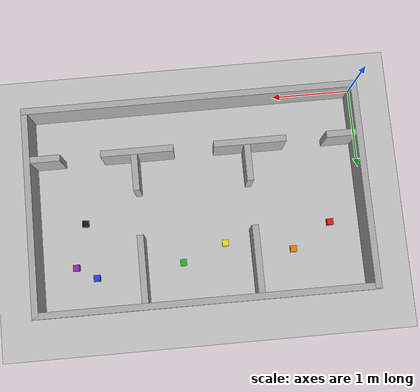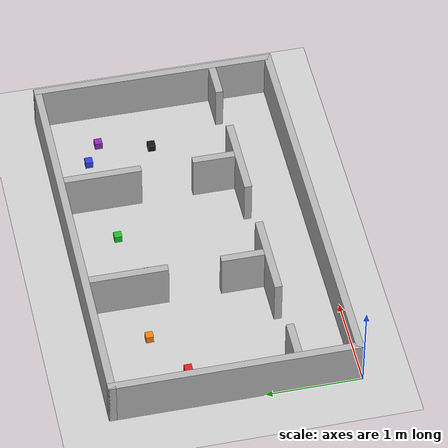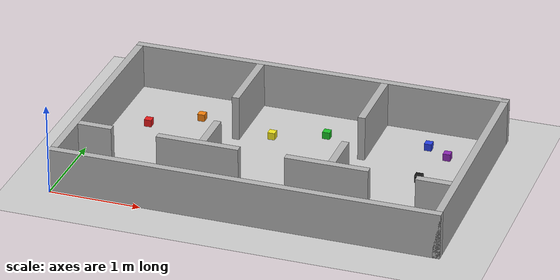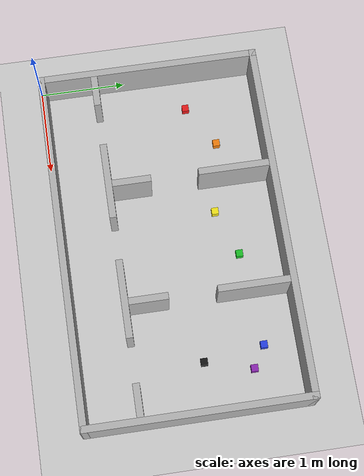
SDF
<?xml version="1.0" ?>

<sdf version="1.6">

  <world name="ee5112_arena">

    <!-- PHYSICS                                                -->

    <physics name="default_physics"
             default="true"
             type="ode">

      <gravity>0 0 -9.81</gravity>

      <ode>

        <solver>
          <type>quick</type>
          <iters>100</iters>
          <sor>1.3</sor>
        </solver>

        <constraints>
          <cfm>0.0</cfm>
          <erp>0.2</erp>
          <contact_max_correcting_vel>
            100.0
          </contact_max_correcting_vel>
          <contact_surface_layer>
            0.001
          </contact_surface_layer>
        </constraints>

      </ode>

      <max_step_size>0.001</max_step_size>

      <real_time_update_rate>
        1000
      </real_time_update_rate>

    </physics>

    <!-- LIGHTING                                               -->

    <include>
      <uri>model://sun</uri>
    </include>

    <!-- GROUND                                                 -->

    <include>
      <uri>model://ground_plane</uri>
    </include>

    <!-- ARENA + BLOCKS                                         -->

    <model name="outer_wall_1">
      <static>true</static>

      <pose>2.1000 0.0400 0.2500 0 0 0</pose>

      <link name="link">

        <collision name="collision">
          <geometry>
            <box>
              <size>4.2000 0.0800 0.5000</size>
            </box>
          </geometry>
        </collision>

        <visual name="visual">
          <geometry>
            <box>
              <size>4.2000 0.0800 0.5000</size>
            </box>
          </geometry>

          <material>
            <ambient>0.70 0.70 0.70 1.00</ambient>
            <diffuse>0.70 0.70 0.70 1.00</diffuse>
            <specular>0.10 0.10 0.10 1.00</specular>
          </material>
        </visual>

      </link>
    </model>

    <model name="outer_wall_2">
      <static>true</static>

      <pose>2.1000 2.5600 0.2500 0 0 0</pose>

      <link name="link">

        <collision name="collision">
          <geometry>
            <box>
              <size>4.2000 0.0800 0.5000</size>
            </box>
          </geometry>
        </collision>

        <visual name="visual">
          <geometry>
            <box>
              <size>4.2000 0.0800 0.5000</size>
            </box>
          </geometry>

          <material>
            <ambient>0.70 0.70 0.70 1.00</ambient>
            <diffuse>0.70 0.70 0.70 1.00</diffuse>
            <specular>0.10 0.10 0.10 1.00</specular>
          </material>
        </visual>

      </link>
    </model>

    <model name="outer_wall_3">
      <static>true</static>

      <pose>0.0400 1.3000 0.2500 0 0 0</pose>

      <link name="link">

        <collision name="collision">
          <geometry>
            <box>
              <size>0.0800 2.6000 0.5000</size>
            </box>
          </geometry>
        </collision>

        <visual name="visual">
          <geometry>
            <box>
              <size>0.0800 2.6000 0.5000</size>
            </box>
          </geometry>

          <material>
            <ambient>0.70 0.70 0.70 1.00</ambient>
            <diffuse>0.70 0.70 0.70 1.00</diffuse>
            <specular>0.10 0.10 0.10 1.00</specular>
          </material>
        </visual>

      </link>
    </model>

    <model name="outer_wall_4">
      <static>true</static>

      <pose>4.1600 1.3000 0.2500 0 0 0</pose>

      <link name="link">

        <collision name="collision">
          <geometry>
            <box>
              <size>0.0800 2.6000 0.5000</size>
            </box>
          </geometry>
        </collision>

        <visual name="visual">
          <geometry>
            <box>
              <size>0.0800 2.6000 0.5000</size>
            </box>
          </geometry>

          <material>
            <ambient>0.70 0.70 0.70 1.00</ambient>
            <diffuse>0.70 0.70 0.70 1.00</diffuse>
            <specular>0.10 0.10 0.10 1.00</specular>
          </material>
        </visual>

      </link>
    </model>

    <model name="corridor_div_1">
      <static>true</static>

      <pose>0.2650 0.6600 0.2500 0 0 0</pose>

      <link name="link">

        <collision name="collision">
          <geometry>
            <box>
              <size>0.3700 0.0800 0.5000</size>
            </box>
          </geometry>
        </collision>

        <visual name="visual">
          <geometry>
            <box>
              <size>0.3700 0.0800 0.5000</size>
            </box>
          </geometry>

          <material>
            <ambient>0.70 0.70 0.70 1.00</ambient>
            <diffuse>0.70 0.70 0.70 1.00</diffuse>
            <specular>0.10 0.10 0.10 1.00</specular>
          </material>
        </visual>

      </link>
    </model>

    <model name="corridor_div_2">
      <static>true</static>

      <pose>1.4000 0.6600 0.2500 0 0 0</pose>

      <link name="link">

        <collision name="collision">
          <geometry>
            <box>
              <size>0.9000 0.0800 0.5000</size>
            </box>
          </geometry>
        </collision>

        <visual name="visual">
          <geometry>
            <box>
              <size>0.9000 0.0800 0.5000</size>
            </box>
          </geometry>

          <material>
            <ambient>0.70 0.70 0.70 1.00</ambient>
            <diffuse>0.70 0.70 0.70 1.00</diffuse>
            <specular>0.10 0.10 0.10 1.00</specular>
          </material>
        </visual>

      </link>
    </model>

    <model name="corridor_div_3">
      <static>true</static>

      <pose>2.8000 0.6600 0.2500 0 0 0</pose>

      <link name="link">

        <collision name="collision">
          <geometry>
            <box>
              <size>0.9000 0.0800 0.5000</size>
            </box>
          </geometry>
        </collision>

        <visual name="visual">
          <geometry>
            <box>
              <size>0.9000 0.0800 0.5000</size>
            </box>
          </geometry>

          <material>
            <ambient>0.70 0.70 0.70 1.00</ambient>
            <diffuse>0.70 0.70 0.70 1.00</diffuse>
            <specular>0.10 0.10 0.10 1.00</specular>
          </material>
        </visual>

      </link>
    </model>

    <model name="corridor_div_4">
      <static>true</static>

      <pose>3.9350 0.6600 0.2500 0 0 0</pose>

      <link name="link">

        <collision name="collision">
          <geometry>
            <box>
              <size>0.3700 0.0800 0.5000</size>
            </box>
          </geometry>
        </collision>

        <visual name="visual">
          <geometry>
            <box>
              <size>0.3700 0.0800 0.5000</size>
            </box>
          </geometry>

          <material>
            <ambient>0.70 0.70 0.70 1.00</ambient>
            <diffuse>0.70 0.70 0.70 1.00</diffuse>
            <specular>0.10 0.10 0.10 1.00</specular>
          </material>
        </visual>

      </link>
    </model>

    <model name="vwall_12_low">
      <static>true</static>

      <pose>1.4400 0.9250 0.2500 0 0 0</pose>

      <link name="link">

        <collision name="collision">
          <geometry>
            <box>
              <size>0.0800 0.4500 0.5000</size>
            </box>
          </geometry>
        </collision>

        <visual name="visual">
          <geometry>
            <box>
              <size>0.0800 0.4500 0.5000</size>
            </box>
          </geometry>

          <material>
            <ambient>0.70 0.70 0.70 1.00</ambient>
            <diffuse>0.70 0.70 0.70 1.00</diffuse>
            <specular>0.10 0.10 0.10 1.00</specular>
          </material>
        </visual>

      </link>
    </model>

    <model name="vwall_12_high">
      <static>true</static>

      <pose>1.4400 2.1100 0.2500 0 0 0</pose>

      <link name="link">

        <collision name="collision">
          <geometry>
            <box>
              <size>0.0800 0.8200 0.5000</size>
            </box>
          </geometry>
        </collision>

        <visual name="visual">
          <geometry>
            <box>
              <size>0.0800 0.8200 0.5000</size>
            </box>
          </geometry>

          <material>
            <ambient>0.70 0.70 0.70 1.00</ambient>
            <diffuse>0.70 0.70 0.70 1.00</diffuse>
            <specular>0.10 0.10 0.10 1.00</specular>
          </material>
        </visual>

      </link>
    </model>

    <model name="vwall_23_low">
      <static>true</static>

      <pose>2.8400 0.9250 0.2500 0 0 0</pose>

      <link name="link">

        <collision name="collision">
          <geometry>
            <box>
              <size>0.0800 0.4500 0.5000</size>
            </box>
          </geometry>
        </collision>

        <visual name="visual">
          <geometry>
            <box>
              <size>0.0800 0.4500 0.5000</size>
            </box>
          </geometry>

          <material>
            <ambient>0.70 0.70 0.70 1.00</ambient>
            <diffuse>0.70 0.70 0.70 1.00</diffuse>
            <specular>0.10 0.10 0.10 1.00</specular>
          </material>
        </visual>

      </link>
    </model>

    <model name="vwall_23_high">
      <static>true</static>

      <pose>2.8400 2.1100 0.2500 0 0 0</pose>

      <link name="link">

        <collision name="collision">
          <geometry>
            <box>
              <size>0.0800 0.8200 0.5000</size>
            </box>
          </geometry>
        </collision>

        <visual name="visual">
          <geometry>
            <box>
              <size>0.0800 0.8200 0.5000</size>
            </box>
          </geometry>

          <material>
            <ambient>0.70 0.70 0.70 1.00</ambient>
            <diffuse>0.70 0.70 0.70 1.00</diffuse>
            <specular>0.10 0.10 0.10 1.00</specular>
          </material>
        </visual>

      </link>
    </model>

    <model name="block_red">
      <static>true</static>

      <pose>0.4500 1.7000 0.0400 0 0 0</pose>

      <link name="link">

        <collision name="collision">
          <geometry>
            <box>
              <size>0.0800 0.0800 0.0800</size>
            </box>
          </geometry>
        </collision>

        <visual name="visual">
          <geometry>
            <box>
              <size>0.0800 0.0800 0.0800</size>
            </box>
          </geometry>

          <material>
            <ambient>0.90 0.10 0.10 1.00</ambient>
            <diffuse>0.90 0.10 0.10 1.00</diffuse>
            <specular>0.10 0.10 0.10 1.00</specular>
            <emissive>0 0 0 0</emissive>
          </material>
        </visual>

      </link>
    </model>

    <model name="block_orange">
      <static>true</static>

      <pose>0.9500 2.0000 0.0400 0 0 0</pose>

      <link name="link">

        <collision name="collision">
          <geometry>
            <box>
              <size>0.0800 0.0800 0.0800</size>
            </box>
          </geometry>
        </collision>

        <visual name="visual">
          <geometry>
            <box>
              <size>0.0800 0.0800 0.0800</size>
            </box>
          </geometry>

          <material>
            <ambient>0.95 0.50 0.05 1.00</ambient>
            <diffuse>0.95 0.50 0.05 1.00</diffuse>
            <specular>0.10 0.10 0.10 1.00</specular>
            <emissive>0 0 0 0</emissive>
          </material>
        </visual>

      </link>
    </model>

    <model name="block_yellow">
      <static>true</static>

      <pose>1.8000 1.8500 0.0400 0 0 0</pose>

      <link name="link">

        <collision name="collision">
          <geometry>
            <box>
              <size>0.0800 0.0800 0.0800</size>
            </box>
          </geometry>
        </collision>

        <visual name="visual">
          <geometry>
            <box>
              <size>0.0800 0.0800 0.0800</size>
            </box>
          </geometry>

          <material>
            <ambient>0.95 0.90 0.10 1.00</ambient>
            <diffuse>0.95 0.90 0.10 1.00</diffuse>
            <specular>0.10 0.10 0.10 1.00</specular>
            <emissive>0 0 0 0</emissive>
          </material>
        </visual>

      </link>
    </model>

    <model name="block_green">
      <static>true</static>

      <pose>2.3500 2.0500 0.0400 0 0 0</pose>

      <link name="link">

        <collision name="collision">
          <geometry>
            <box>
              <size>0.0800 0.0800 0.0800</size>
            </box>
          </geometry>
        </collision>

        <visual name="visual">
          <geometry>
            <box>
              <size>0.0800 0.0800 0.0800</size>
            </box>
          </geometry>

          <material>
            <ambient>0.10 0.75 0.15 1.00</ambient>
            <diffuse>0.10 0.75 0.15 1.00</diffuse>
            <specular>0.10 0.10 0.10 1.00</specular>
            <emissive>0 0 0 0</emissive>
          </material>
        </visual>

      </link>
    </model>

    <model name="block_blue">
      <static>true</static>

      <pose>3.4500 2.1500 0.0400 0 0 0</pose>

      <link name="link">

        <collision name="collision">
          <geometry>
            <box>
              <size>0.0800 0.0800 0.0800</size>
            </box>
          </geometry>
        </collision>

        <visual name="visual">
          <geometry>
            <box>
              <size>0.0800 0.0800 0.0800</size>
            </box>
          </geometry>

          <material>
            <ambient>0.15 0.25 0.90 1.00</ambient>
            <diffuse>0.15 0.25 0.90 1.00</diffuse>
            <specular>0.10 0.10 0.10 1.00</specular>
            <emissive>0 0 0 0</emissive>
          </material>
        </visual>

      </link>
    </model>

    <model name="block_purple">
      <static>true</static>

      <pose>3.7000 2.0000 0.0400 0 0 0</pose>

      <link name="link">

        <collision name="collision">
          <geometry>
            <box>
              <size>0.0800 0.0800 0.0800</size>
            </box>
          </geometry>
        </collision>

        <visual name="visual">
          <geometry>
            <box>
              <size>0.0800 0.0800 0.0800</size>
            </box>
          </geometry>

          <material>
            <ambient>0.55 0.15 0.70 1.00</ambient>
            <diffuse>0.55 0.15 0.70 1.00</diffuse>
            <specular>0.10 0.10 0.10 1.00</specular>
            <emissive>0 0 0 0</emissive>
          </material>
        </visual>

      </link>
    </model>

    <model name="block_black">
      <static>true</static>

      <pose>3.5500 1.4500 0.0400 0 0 0</pose>

      <link name="link">

        <collision name="collision">
          <geometry>
            <box>
              <size>0.0800 0.0800 0.0800</size>
            </box>
          </geometry>
        </collision>

        <visual name="visual">
          <geometry>
            <box>
              <size>0.0800 0.0800 0.0800</size>
            </box>
          </geometry>

          <material>
            <ambient>0.08 0.08 0.08 1.00</ambient>
            <diffuse>0.08 0.08 0.08 1.00</diffuse>
            <specular>0.10 0.10 0.10 1.00</specular>
            <emissive>0 0 0 0</emissive>
          </material>
        </visual>

      </link>
    </model>

    <!-- GUI CAMERA                                             -->

    <gui fullscreen="0">

      <camera name="user_camera">

        <pose>
          2.10 -2.00 4.50
          0 0.85 1.57
        </pose>

      </camera>

    </gui>

  </world>

</sdf>
